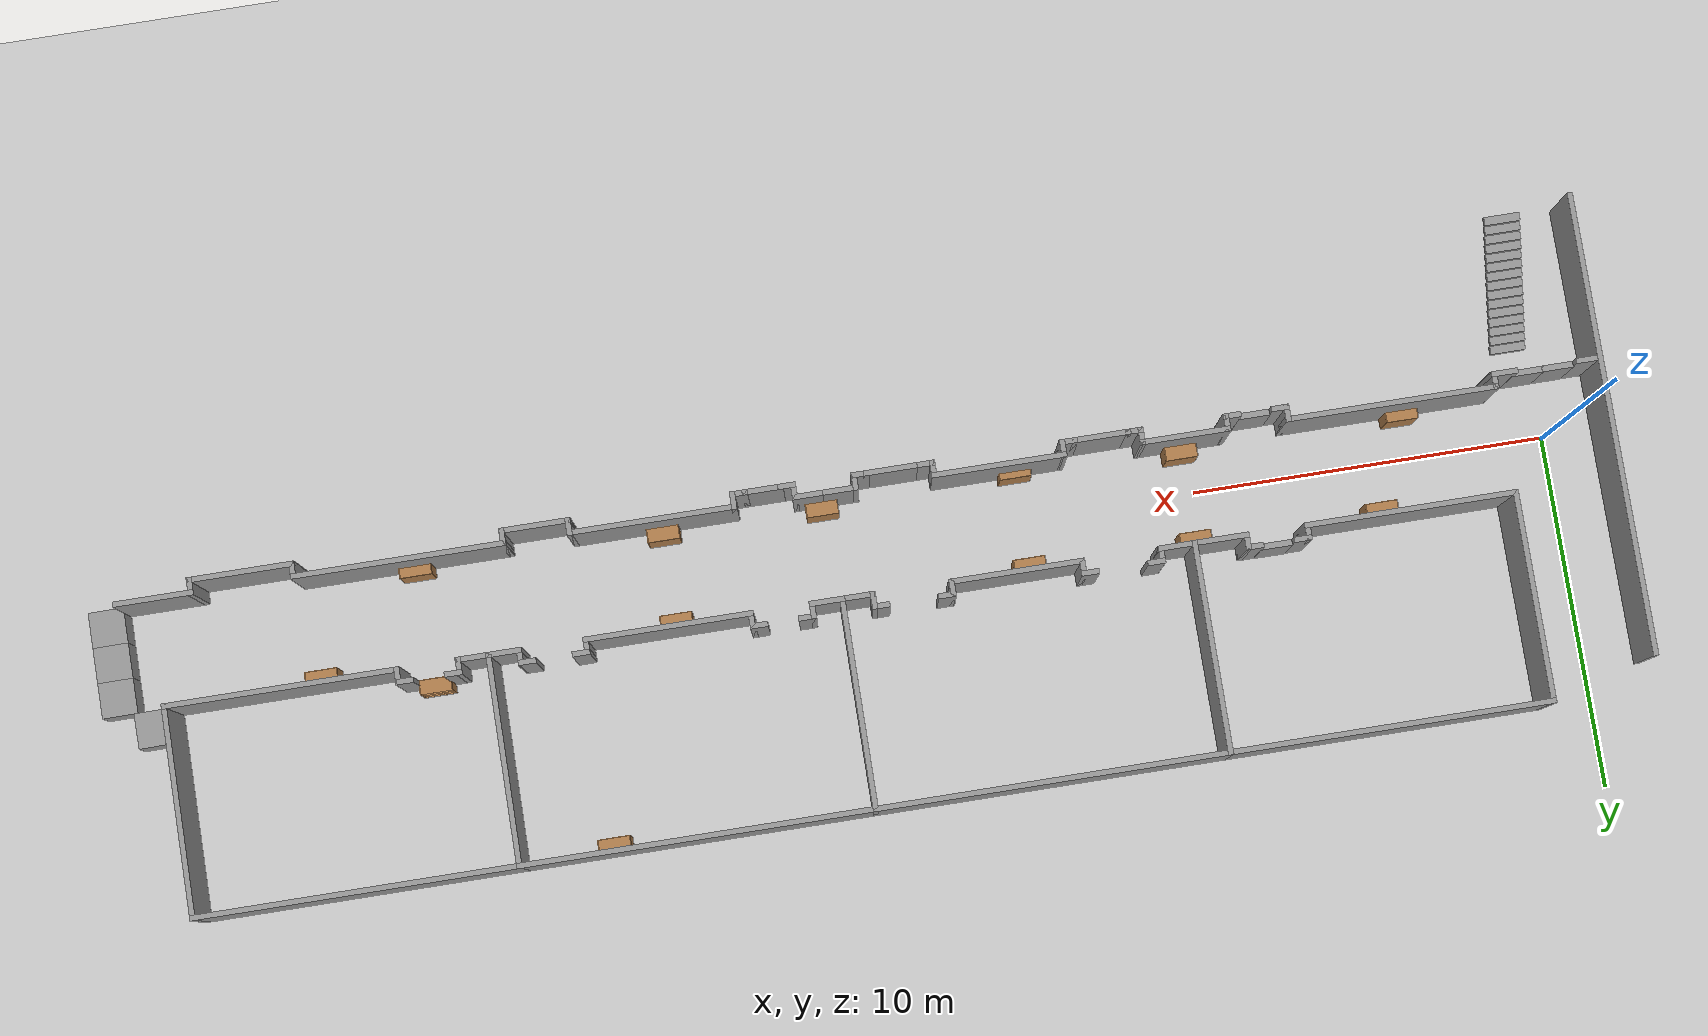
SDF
<sdf version="1.6">
 <world name="default">
  <include><uri>model://ground_plane</uri></include>
  <include><uri>model://sun</uri></include>
  <include><uri>model://corridor</uri><pose>19.325 0.575 0 0 -0 0</pose></include>
  <gravity>0 0 -9.8</gravity>
  <magnetic_field>6e-06 2.3e-05 -4.2e-05</magnetic_field>
  <atmosphere type="adiabatic"/>
  <physics name="default_physics" default="0" type="ode">
   <max_step_size>0.001</max_step_size>
   <real_time_factor>1</real_time_factor>
   <real_time_update_rate>1000</real_time_update_rate>
  </physics>
  <scene><ambient>0.4 0.4 0.4 1</ambient><background>0.7 0.7 0.7 1</background><shadows>1</shadows></scene>
  <spherical_coordinates>
   <surface_model>EARTH_WGS84</surface_model>
   <latitude_deg>0</latitude_deg>
   <longitude_deg>0</longitude_deg>
   <elevation>0</elevation>
   <heading_deg>0</heading_deg>
  </spherical_coordinates>
  <model name="bookshelf">
   <static>1</static>
   <link name="link">
    <inertial><mass>1</mass></inertial>
    <collision name="back">
     <pose>0 0.005 0.6 0 -0 0</pose>
     <geometry><box><size>0.9 0.01 1.2</size></box></geometry>
    </collision>
    <visual name="visual1">
     <pose>0 0.005 0.6 0 -0 0</pose>
     <geometry><box><size>0.9 0.01 1.2</size></box></geometry>
     <material>
      <script><uri>file://media/materials/scripts/gazebo.material</uri><name>Gazebo/Wood</name></script>
     </material>
    </visual>
    <collision name="left_side">
     <pose>0.45 -0.195 0.6 0 -0 0</pose>
     <geometry><box><size>0.02 0.4 1.2</size></box></geometry>
    </collision>
    <visual name="visual2">
     <pose>0.45 -0.195 0.6 0 -0 0</pose>
     <geometry><box><size>0.02 0.4 1.2</size></box></geometry>
     <material>
      <script><uri>file://media/materials/scripts/gazebo.material</uri><name>Gazebo/Wood</name></script>
     </material>
    </visual>
    <collision name="right_side">
     <pose>-0.45 -0.195 0.6 0 -0 0</pose>
     <geometry><box><size>0.02 0.4 1.2</size></box></geometry>
    </collision>
    <visual name="visual3">
     <pose>-0.45 -0.195 0.6 0 -0 0</pose>
     <geometry><box><size>0.02 0.4 1.2</size></box></geometry>
     <material>
      <script><uri>file://media/materials/scripts/gazebo.material</uri><name>Gazebo/Wood</name></script>
     </material>
    </visual>
    <collision name="bottom">
     <pose>0 -0.195 0.03 0 -0 0</pose>
     <geometry><box><size>0.88 0.4 0.06</size></box></geometry>
    </collision>
    <visual name="visual4">
     <pose>0 -0.195 0.03 0 -0 0</pose>
     <geometry><box><size>0.88 0.4 0.06</size></box></geometry>
     <material>
      <script><uri>file://media/materials/scripts/gazebo.material</uri><name>Gazebo/Wood</name></script>
     </material>
    </visual>
    <collision name="top">
     <pose>0 -0.195 1.19 0 -0 0</pose>
     <geometry><box><size>0.88 0.4 0.02</size></box></geometry>
    </collision>
    <visual name="visual5">
     <pose>0 -0.195 1.19 0 -0 0</pose>
     <geometry><box><size>0.88 0.4 0.02</size></box></geometry>
     <material>
      <script><uri>file://media/materials/scripts/gazebo.material</uri><name>Gazebo/Wood</name></script>
     </material>
    </visual>
    <collision name="low_shelf">
     <pose>0 -0.195 0.43 0 -0 0</pose>
     <geometry><box><size>0.88 0.4 0.02</size></box></geometry>
    </collision>
    <visual name="visual6">
     <pose>0 -0.195 0.43 0 -0 0</pose>
     <geometry><box><size>0.88 0.4 0.02</size></box></geometry>
     <material>
      <script><uri>file://media/materials/scripts/gazebo.material</uri><name>Gazebo/Wood</name></script>
     </material>
    </visual>
    <collision name="high_shelf">
     <pose>0 -0.195 0.8 0 -0 0</pose>
     <geometry><box><size>0.88 0.4 0.02</size></box></geometry>
    </collision>
    <visual name="visual7">
     <pose>0 -0.195 0.8 0 -0 0</pose>
     <geometry><box><size>0.88 0.4 0.02</size></box></geometry>
     <material>
      <script><uri>file://media/materials/scripts/gazebo.material</uri><name>Gazebo/Wood</name></script>
     </material>
    </visual>
   </link>
   <pose>4 -1 0 0 -0 0</pose>
  </model>
  <model name="bookshelf_clone">
   <static>1</static>
   <link name="link">
    <inertial><mass>1</mass></inertial>
    <collision name="back">
     <pose>0 0.005 0.6 0 -0 0</pose>
     <geometry><box><size>0.9 0.01 1.2</size></box></geometry>
    </collision>
    <visual name="visual1">
     <pose>0 0.005 0.6 0 -0 0</pose>
     <geometry><box><size>0.9 0.01 1.2</size></box></geometry>
     <material>
      <script><uri>file://media/materials/scripts/gazebo.material</uri><name>Gazebo/Wood</name></script>
     </material>
    </visual>
    <collision name="left_side">
     <pose>0.45 -0.195 0.6 0 -0 0</pose>
     <geometry><box><size>0.02 0.4 1.2</size></box></geometry>
    </collision>
    <visual name="visual2">
     <pose>0.45 -0.195 0.6 0 -0 0</pose>
     <geometry><box><size>0.02 0.4 1.2</size></box></geometry>
     <material>
      <script><uri>file://media/materials/scripts/gazebo.material</uri><name>Gazebo/Wood</name></script>
     </material>
    </visual>
    <collision name="right_side">
     <pose>-0.45 -0.195 0.6 0 -0 0</pose>
     <geometry><box><size>0.02 0.4 1.2</size></box></geometry>
    </collision>
    <visual name="visual3">
     <pose>-0.45 -0.195 0.6 0 -0 0</pose>
     <geometry><box><size>0.02 0.4 1.2</size></box></geometry>
     <material>
      <script><uri>file://media/materials/scripts/gazebo.material</uri><name>Gazebo/Wood</name></script>
     </material>
    </visual>
    <collision name="bottom">
     <pose>0 -0.195 0.03 0 -0 0</pose>
     <geometry><box><size>0.88 0.4 0.06</size></box></geometry>
    </collision>
    <visual name="visual4">
     <pose>0 -0.195 0.03 0 -0 0</pose>
     <geometry><box><size>0.88 0.4 0.06</size></box></geometry>
     <material>
      <script><uri>file://media/materials/scripts/gazebo.material</uri><name>Gazebo/Wood</name></script>
     </material>
    </visual>
    <collision name="top">
     <pose>0 -0.195 1.19 0 -0 0</pose>
     <geometry><box><size>0.88 0.4 0.02</size></box></geometry>
    </collision>
    <visual name="visual5">
     <pose>0 -0.195 1.19 0 -0 0</pose>
     <geometry><box><size>0.88 0.4 0.02</size></box></geometry>
     <material>
      <script><uri>file://media/materials/scripts/gazebo.material</uri><name>Gazebo/Wood</name></script>
     </material>
    </visual>
    <collision name="low_shelf">
     <pose>0 -0.195 0.43 0 -0 0</pose>
     <geometry><box><size>0.88 0.4 0.02</size></box></geometry>
    </collision>
    <visual name="visual6">
     <pose>0 -0.195 0.43 0 -0 0</pose>
     <geometry><box><size>0.88 0.4 0.02</size></box></geometry>
     <material>
      <script><uri>file://media/materials/scripts/gazebo.material</uri><name>Gazebo/Wood</name></script>
     </material>
    </visual>
    <collision name="high_shelf">
     <pose>0 -0.195 0.8 0 -0 0</pose>
     <geometry><box><size>0.88 0.4 0.02</size></box></geometry>
    </collision>
    <visual name="visual7">
     <pose>0 -0.195 0.8 0 -0 0</pose>
     <geometry><box><size>0.88 0.4 0.02</size></box></geometry>
     <material>
      <script><uri>file://media/materials/scripts/gazebo.material</uri><name>Gazebo/Wood</name></script>
     </material>
    </visual>
   </link>
   <pose>10.3 -0.9 0 0 -0 0</pose>
  </model>
  <model name="bookshelf_clone_0">
   <static>1</static>
   <link name="link">
    <inertial><mass>1</mass></inertial>
    <collision name="back">
     <pose>0 0.005 0.6 0 -0 0</pose>
     <geometry><box><size>0.9 0.01 1.2</size></box></geometry>
    </collision>
    <visual name="visual1">
     <pose>0 0.005 0.6 0 -0 0</pose>
     <geometry><box><size>0.9 0.01 1.2</size></box></geometry>
     <material>
      <script><uri>file://media/materials/scripts/gazebo.material</uri><name>Gazebo/Wood</name></script>
     </material>
    </visual>
    <collision name="left_side">
     <pose>0.45 -0.195 0.6 0 -0 0</pose>
     <geometry><box><size>0.02 0.4 1.2</size></box></geometry>
    </collision>
    <visual name="visual2">
     <pose>0.45 -0.195 0.6 0 -0 0</pose>
     <geometry><box><size>0.02 0.4 1.2</size></box></geometry>
     <material>
      <script><uri>file://media/materials/scripts/gazebo.material</uri><name>Gazebo/Wood</name></script>
     </material>
    </visual>
    <collision name="right_side">
     <pose>-0.45 -0.195 0.6 0 -0 0</pose>
     <geometry><box><size>0.02 0.4 1.2</size></box></geometry>
    </collision>
    <visual name="visual3">
     <pose>-0.45 -0.195 0.6 0 -0 0</pose>
     <geometry><box><size>0.02 0.4 1.2</size></box></geometry>
     <material>
      <script><uri>file://media/materials/scripts/gazebo.material</uri><name>Gazebo/Wood</name></script>
     </material>
    </visual>
    <collision name="bottom">
     <pose>0 -0.195 0.03 0 -0 0</pose>
     <geometry><box><size>0.88 0.4 0.06</size></box></geometry>
    </collision>
    <visual name="visual4">
     <pose>0 -0.195 0.03 0 -0 0</pose>
     <geometry><box><size>0.88 0.4 0.06</size></box></geometry>
     <material>
      <script><uri>file://media/materials/scripts/gazebo.material</uri><name>Gazebo/Wood</name></script>
     </material>
    </visual>
    <collision name="top">
     <pose>0 -0.195 1.19 0 -0 0</pose>
     <geometry><box><size>0.88 0.4 0.02</size></box></geometry>
    </collision>
    <visual name="visual5">
     <pose>0 -0.195 1.19 0 -0 0</pose>
     <geometry><box><size>0.88 0.4 0.02</size></box></geometry>
     <material>
      <script><uri>file://media/materials/scripts/gazebo.material</uri><name>Gazebo/Wood</name></script>
     </material>
    </visual>
    <collision name="low_shelf">
     <pose>0 -0.195 0.43 0 -0 0</pose>
     <geometry><box><size>0.88 0.4 0.02</size></box></geometry>
    </collision>
    <visual name="visual6">
     <pose>0 -0.195 0.43 0 -0 0</pose>
     <geometry><box><size>0.88 0.4 0.02</size></box></geometry>
     <material>
      <script><uri>file://media/materials/scripts/gazebo.material</uri><name>Gazebo/Wood</name></script>
     </material>
    </visual>
    <collision name="high_shelf">
     <pose>0 -0.195 0.8 0 -0 0</pose>
     <geometry><box><size>0.88 0.4 0.02</size></box></geometry>
    </collision>
    <visual name="visual7">
     <pose>0 -0.195 0.8 0 -0 0</pose>
     <geometry><box><size>0.88 0.4 0.02</size></box></geometry>
     <material>
      <script><uri>file://media/materials/scripts/gazebo.material</uri><name>Gazebo/Wood</name></script>
     </material>
    </visual>
   </link>
   <pose>15 -1.1 0 0 -0 0</pose>
  </model>
  <model name="bookshelf_clone_1">
   <static>1</static>
   <link name="link">
    <inertial><mass>1</mass></inertial>
    <collision name="back">
     <pose>0 0.005 0.6 0 -0 0</pose>
     <geometry><box><size>0.9 0.01 1.2</size></box></geometry>
    </collision>
    <visual name="visual1">
     <pose>0 0.005 0.6 0 -0 0</pose>
     <geometry><box><size>0.9 0.01 1.2</size></box></geometry>
     <material>
      <script><uri>file://media/materials/scripts/gazebo.material</uri><name>Gazebo/Wood</name></script>
     </material>
    </visual>
    <collision name="left_side">
     <pose>0.45 -0.195 0.6 0 -0 0</pose>
     <geometry><box><size>0.02 0.4 1.2</size></box></geometry>
    </collision>
    <visual name="visual2">
     <pose>0.45 -0.195 0.6 0 -0 0</pose>
     <geometry><box><size>0.02 0.4 1.2</size></box></geometry>
     <material>
      <script><uri>file://media/materials/scripts/gazebo.material</uri><name>Gazebo/Wood</name></script>
     </material>
    </visual>
    <collision name="right_side">
     <pose>-0.45 -0.195 0.6 0 -0 0</pose>
     <geometry><box><size>0.02 0.4 1.2</size></box></geometry>
    </collision>
    <visual name="visual3">
     <pose>-0.45 -0.195 0.6 0 -0 0</pose>
     <geometry><box><size>0.02 0.4 1.2</size></box></geometry>
     <material>
      <script><uri>file://media/materials/scripts/gazebo.material</uri><name>Gazebo/Wood</name></script>
     </material>
    </visual>
    <collision name="bottom">
     <pose>0 -0.195 0.03 0 -0 0</pose>
     <geometry><box><size>0.88 0.4 0.06</size></box></geometry>
    </collision>
    <visual name="visual4">
     <pose>0 -0.195 0.03 0 -0 0</pose>
     <geometry><box><size>0.88 0.4 0.06</size></box></geometry>
     <material>
      <script><uri>file://media/materials/scripts/gazebo.material</uri><name>Gazebo/Wood</name></script>
     </material>
    </visual>
    <collision name="top">
     <pose>0 -0.195 1.19 0 -0 0</pose>
     <geometry><box><size>0.88 0.4 0.02</size></box></geometry>
    </collision>
    <visual name="visual5">
     <pose>0 -0.195 1.19 0 -0 0</pose>
     <geometry><box><size>0.88 0.4 0.02</size></box></geometry>
     <material>
      <script><uri>file://media/materials/scripts/gazebo.material</uri><name>Gazebo/Wood</name></script>
     </material>
    </visual>
    <collision name="low_shelf">
     <pose>0 -0.195 0.43 0 -0 0</pose>
     <geometry><box><size>0.88 0.4 0.02</size></box></geometry>
    </collision>
    <visual name="visual6">
     <pose>0 -0.195 0.43 0 -0 0</pose>
     <geometry><box><size>0.88 0.4 0.02</size></box></geometry>
     <material>
      <script><uri>file://media/materials/scripts/gazebo.material</uri><name>Gazebo/Wood</name></script>
     </material>
    </visual>
    <collision name="high_shelf">
     <pose>0 -0.195 0.8 0 -0 0</pose>
     <geometry><box><size>0.88 0.4 0.02</size></box></geometry>
    </collision>
    <visual name="visual7">
     <pose>0 -0.195 0.8 0 -0 0</pose>
     <geometry><box><size>0.88 0.4 0.02</size></box></geometry>
     <material>
      <script><uri>file://media/materials/scripts/gazebo.material</uri><name>Gazebo/Wood</name></script>
     </material>
    </visual>
   </link>
   <pose>20.5 -0.9 0 0 -0 0</pose>
  </model>
  <model name="bookshelf_clone_2">
   <static>1</static>
   <link name="link">
    <inertial><mass>1</mass></inertial>
    <collision name="back">
     <pose>0 0.005 0.6 0 -0 0</pose>
     <geometry><box><size>0.9 0.01 1.2</size></box></geometry>
    </collision>
    <visual name="visual1">
     <pose>0 0.005 0.6 0 -0 0</pose>
     <geometry><box><size>0.9 0.01 1.2</size></box></geometry>
     <material>
      <script><uri>file://media/materials/scripts/gazebo.material</uri><name>Gazebo/Wood</name></script>
     </material>
    </visual>
    <collision name="left_side">
     <pose>0.45 -0.195 0.6 0 -0 0</pose>
     <geometry><box><size>0.02 0.4 1.2</size></box></geometry>
    </collision>
    <visual name="visual2">
     <pose>0.45 -0.195 0.6 0 -0 0</pose>
     <geometry><box><size>0.02 0.4 1.2</size></box></geometry>
     <material>
      <script><uri>file://media/materials/scripts/gazebo.material</uri><name>Gazebo/Wood</name></script>
     </material>
    </visual>
    <collision name="right_side">
     <pose>-0.45 -0.195 0.6 0 -0 0</pose>
     <geometry><box><size>0.02 0.4 1.2</size></box></geometry>
    </collision>
    <visual name="visual3">
     <pose>-0.45 -0.195 0.6 0 -0 0</pose>
     <geometry><box><size>0.02 0.4 1.2</size></box></geometry>
     <material>
      <script><uri>file://media/materials/scripts/gazebo.material</uri><name>Gazebo/Wood</name></script>
     </material>
    </visual>
    <collision name="bottom">
     <pose>0 -0.195 0.03 0 -0 0</pose>
     <geometry><box><size>0.88 0.4 0.06</size></box></geometry>
    </collision>
    <visual name="visual4">
     <pose>0 -0.195 0.03 0 -0 0</pose>
     <geometry><box><size>0.88 0.4 0.06</size></box></geometry>
     <material>
      <script><uri>file://media/materials/scripts/gazebo.material</uri><name>Gazebo/Wood</name></script>
     </material>
    </visual>
    <collision name="top">
     <pose>0 -0.195 1.19 0 -0 0</pose>
     <geometry><box><size>0.88 0.4 0.02</size></box></geometry>
    </collision>
    <visual name="visual5">
     <pose>0 -0.195 1.19 0 -0 0</pose>
     <geometry><box><size>0.88 0.4 0.02</size></box></geometry>
     <material>
      <script><uri>file://media/materials/scripts/gazebo.material</uri><name>Gazebo/Wood</name></script>
     </material>
    </visual>
    <collision name="low_shelf">
     <pose>0 -0.195 0.43 0 -0 0</pose>
     <geometry><box><size>0.88 0.4 0.02</size></box></geometry>
    </collision>
    <visual name="visual6">
     <pose>0 -0.195 0.43 0 -0 0</pose>
     <geometry><box><size>0.88 0.4 0.02</size></box></geometry>
     <material>
      <script><uri>file://media/materials/scripts/gazebo.material</uri><name>Gazebo/Wood</name></script>
     </material>
    </visual>
    <collision name="high_shelf">
     <pose>0 -0.195 0.8 0 -0 0</pose>
     <geometry><box><size>0.88 0.4 0.02</size></box></geometry>
    </collision>
    <visual name="visual7">
     <pose>0 -0.195 0.8 0 -0 0</pose>
     <geometry><box><size>0.88 0.4 0.02</size></box></geometry>
     <material>
      <script><uri>file://media/materials/scripts/gazebo.material</uri><name>Gazebo/Wood</name></script>
     </material>
    </visual>
   </link>
   <pose>25 -0.9 0 0 -0 0</pose>
  </model>
  <model name="bookshelf_clone_3">
   <static>1</static>
   <link name="link">
    <inertial><mass>1</mass></inertial>
    <collision name="back">
     <pose>0 0.005 0.6 0 -0 0</pose>
     <geometry><box><size>0.9 0.01 1.2</size></box></geometry>
    </collision>
    <visual name="visual1">
     <pose>0 0.005 0.6 0 -0 0</pose>
     <geometry><box><size>0.9 0.01 1.2</size></box></geometry>
     <material>
      <script><uri>file://media/materials/scripts/gazebo.material</uri><name>Gazebo/Wood</name></script>
     </material>
    </visual>
    <collision name="left_side">
     <pose>0.45 -0.195 0.6 0 -0 0</pose>
     <geometry><box><size>0.02 0.4 1.2</size></box></geometry>
    </collision>
    <visual name="visual2">
     <pose>0.45 -0.195 0.6 0 -0 0</pose>
     <geometry><box><size>0.02 0.4 1.2</size></box></geometry>
     <material>
      <script><uri>file://media/materials/scripts/gazebo.material</uri><name>Gazebo/Wood</name></script>
     </material>
    </visual>
    <collision name="right_side">
     <pose>-0.45 -0.195 0.6 0 -0 0</pose>
     <geometry><box><size>0.02 0.4 1.2</size></box></geometry>
    </collision>
    <visual name="visual3">
     <pose>-0.45 -0.195 0.6 0 -0 0</pose>
     <geometry><box><size>0.02 0.4 1.2</size></box></geometry>
     <material>
      <script><uri>file://media/materials/scripts/gazebo.material</uri><name>Gazebo/Wood</name></script>
     </material>
    </visual>
    <collision name="bottom">
     <pose>0 -0.195 0.03 0 -0 0</pose>
     <geometry><box><size>0.88 0.4 0.06</size></box></geometry>
    </collision>
    <visual name="visual4">
     <pose>0 -0.195 0.03 0 -0 0</pose>
     <geometry><box><size>0.88 0.4 0.06</size></box></geometry>
     <material>
      <script><uri>file://media/materials/scripts/gazebo.material</uri><name>Gazebo/Wood</name></script>
     </material>
    </visual>
    <collision name="top">
     <pose>0 -0.195 1.19 0 -0 0</pose>
     <geometry><box><size>0.88 0.4 0.02</size></box></geometry>
    </collision>
    <visual name="visual5">
     <pose>0 -0.195 1.19 0 -0 0</pose>
     <geometry><box><size>0.88 0.4 0.02</size></box></geometry>
     <material>
      <script><uri>file://media/materials/scripts/gazebo.material</uri><name>Gazebo/Wood</name></script>
     </material>
    </visual>
    <collision name="low_shelf">
     <pose>0 -0.195 0.43 0 -0 0</pose>
     <geometry><box><size>0.88 0.4 0.02</size></box></geometry>
    </collision>
    <visual name="visual6">
     <pose>0 -0.195 0.43 0 -0 0</pose>
     <geometry><box><size>0.88 0.4 0.02</size></box></geometry>
     <material>
      <script><uri>file://media/materials/scripts/gazebo.material</uri><name>Gazebo/Wood</name></script>
     </material>
    </visual>
    <collision name="high_shelf">
     <pose>0 -0.195 0.8 0 -0 0</pose>
     <geometry><box><size>0.88 0.4 0.02</size></box></geometry>
    </collision>
    <visual name="visual7">
     <pose>0 -0.195 0.8 0 -0 0</pose>
     <geometry><box><size>0.88 0.4 0.02</size></box></geometry>
     <material>
      <script><uri>file://media/materials/scripts/gazebo.material</uri><name>Gazebo/Wood</name></script>
     </material>
    </visual>
   </link>
   <pose>32 -1 0 0 -0 0</pose>
  </model>
  <model name="bookshelf_clone_4">
   <static>1</static>
   <link name="link">
    <inertial><mass>1</mass></inertial>
    <collision name="back">
     <pose>0 0.005 0.6 0 -0 0</pose>
     <geometry><box><size>0.9 0.01 1.2</size></box></geometry>
    </collision>
    <visual name="visual1">
     <pose>0 0.005 0.6 0 -0 0</pose>
     <geometry><box><size>0.9 0.01 1.2</size></box></geometry>
     <material>
      <script><uri>file://media/materials/scripts/gazebo.material</uri><name>Gazebo/Wood</name></script>
     </material>
    </visual>
    <collision name="left_side">
     <pose>0.45 -0.195 0.6 0 -0 0</pose>
     <geometry><box><size>0.02 0.4 1.2</size></box></geometry>
    </collision>
    <visual name="visual2">
     <pose>0.45 -0.195 0.6 0 -0 0</pose>
     <geometry><box><size>0.02 0.4 1.2</size></box></geometry>
     <material>
      <script><uri>file://media/materials/scripts/gazebo.material</uri><name>Gazebo/Wood</name></script>
     </material>
    </visual>
    <collision name="right_side">
     <pose>-0.45 -0.195 0.6 0 -0 0</pose>
     <geometry><box><size>0.02 0.4 1.2</size></box></geometry>
    </collision>
    <visual name="visual3">
     <pose>-0.45 -0.195 0.6 0 -0 0</pose>
     <geometry><box><size>0.02 0.4 1.2</size></box></geometry>
     <material>
      <script><uri>file://media/materials/scripts/gazebo.material</uri><name>Gazebo/Wood</name></script>
     </material>
    </visual>
    <collision name="bottom">
     <pose>0 -0.195 0.03 0 -0 0</pose>
     <geometry><box><size>0.88 0.4 0.06</size></box></geometry>
    </collision>
    <visual name="visual4">
     <pose>0 -0.195 0.03 0 -0 0</pose>
     <geometry><box><size>0.88 0.4 0.06</size></box></geometry>
     <material>
      <script><uri>file://media/materials/scripts/gazebo.material</uri><name>Gazebo/Wood</name></script>
     </material>
    </visual>
    <collision name="top">
     <pose>0 -0.195 1.19 0 -0 0</pose>
     <geometry><box><size>0.88 0.4 0.02</size></box></geometry>
    </collision>
    <visual name="visual5">
     <pose>0 -0.195 1.19 0 -0 0</pose>
     <geometry><box><size>0.88 0.4 0.02</size></box></geometry>
     <material>
      <script><uri>file://media/materials/scripts/gazebo.material</uri><name>Gazebo/Wood</name></script>
     </material>
    </visual>
    <collision name="low_shelf">
     <pose>0 -0.195 0.43 0 -0 0</pose>
     <geometry><box><size>0.88 0.4 0.02</size></box></geometry>
    </collision>
    <visual name="visual6">
     <pose>0 -0.195 0.43 0 -0 0</pose>
     <geometry><box><size>0.88 0.4 0.02</size></box></geometry>
     <material>
      <script><uri>file://media/materials/scripts/gazebo.material</uri><name>Gazebo/Wood</name></script>
     </material>
    </visual>
    <collision name="high_shelf">
     <pose>0 -0.195 0.8 0 -0 0</pose>
     <geometry><box><size>0.88 0.4 0.02</size></box></geometry>
    </collision>
    <visual name="visual7">
     <pose>0 -0.195 0.8 0 -0 0</pose>
     <geometry><box><size>0.88 0.4 0.02</size></box></geometry>
     <material>
      <script><uri>file://media/materials/scripts/gazebo.material</uri><name>Gazebo/Wood</name></script>
     </material>
    </visual>
   </link>
   <pose>5 1.2 0 0 0 -3.14159</pose>
  </model>
  <model name="bookshelf_clone_4_clone">
   <static>1</static>
   <link name="link">
    <inertial><mass>1</mass></inertial>
    <collision name="back">
     <pose>0 0.005 0.6 0 -0 0</pose>
     <geometry><box><size>0.9 0.01 1.2</size></box></geometry>
    </collision>
    <visual name="visual1">
     <pose>0 0.005 0.6 0 -0 0</pose>
     <geometry><box><size>0.9 0.01 1.2</size></box></geometry>
     <material>
      <script><uri>file://media/materials/scripts/gazebo.material</uri><name>Gazebo/Wood</name></script>
     </material>
    </visual>
    <collision name="left_side">
     <pose>0.45 -0.195 0.6 0 -0 0</pose>
     <geometry><box><size>0.02 0.4 1.2</size></box></geometry>
    </collision>
    <visual name="visual2">
     <pose>0.45 -0.195 0.6 0 -0 0</pose>
     <geometry><box><size>0.02 0.4 1.2</size></box></geometry>
     <material>
      <script><uri>file://media/materials/scripts/gazebo.material</uri><name>Gazebo/Wood</name></script>
     </material>
    </visual>
    <collision name="right_side">
     <pose>-0.45 -0.195 0.6 0 -0 0</pose>
     <geometry><box><size>0.02 0.4 1.2</size></box></geometry>
    </collision>
    <visual name="visual3">
     <pose>-0.45 -0.195 0.6 0 -0 0</pose>
     <geometry><box><size>0.02 0.4 1.2</size></box></geometry>
     <material>
      <script><uri>file://media/materials/scripts/gazebo.material</uri><name>Gazebo/Wood</name></script>
     </material>
    </visual>
    <collision name="bottom">
     <pose>0 -0.195 0.03 0 -0 0</pose>
     <geometry><box><size>0.88 0.4 0.06</size></box></geometry>
    </collision>
    <visual name="visual4">
     <pose>0 -0.195 0.03 0 -0 0</pose>
     <geometry><box><size>0.88 0.4 0.06</size></box></geometry>
     <material>
      <script><uri>file://media/materials/scripts/gazebo.material</uri><name>Gazebo/Wood</name></script>
     </material>
    </visual>
    <collision name="top">
     <pose>0 -0.195 1.19 0 -0 0</pose>
     <geometry><box><size>0.88 0.4 0.02</size></box></geometry>
    </collision>
    <visual name="visual5">
     <pose>0 -0.195 1.19 0 -0 0</pose>
     <geometry><box><size>0.88 0.4 0.02</size></box></geometry>
     <material>
      <script><uri>file://media/materials/scripts/gazebo.material</uri><name>Gazebo/Wood</name></script>
     </material>
    </visual>
    <collision name="low_shelf">
     <pose>0 -0.195 0.43 0 -0 0</pose>
     <geometry><box><size>0.88 0.4 0.02</size></box></geometry>
    </collision>
    <visual name="visual6">
     <pose>0 -0.195 0.43 0 -0 0</pose>
     <geometry><box><size>0.88 0.4 0.02</size></box></geometry>
     <material>
      <script><uri>file://media/materials/scripts/gazebo.material</uri><name>Gazebo/Wood</name></script>
     </material>
    </visual>
    <collision name="high_shelf">
     <pose>0 -0.195 0.8 0 -0 0</pose>
     <geometry><box><size>0.88 0.4 0.02</size></box></geometry>
    </collision>
    <visual name="visual7">
     <pose>0 -0.195 0.8 0 -0 0</pose>
     <geometry><box><size>0.88 0.4 0.02</size></box></geometry>
     <material>
      <script><uri>file://media/materials/scripts/gazebo.material</uri><name>Gazebo/Wood</name></script>
     </material>
    </visual>
   </link>
   <pose>10.3 1.2 0 0 0 -3.14159</pose>
  </model>
  <model name="bookshelf_clone_4_clone_0">
   <static>1</static>
   <link name="link">
    <inertial><mass>1</mass></inertial>
    <collision name="back">
     <pose>0 0.005 0.6 0 -0 0</pose>
     <geometry><box><size>0.9 0.01 1.2</size></box></geometry>
    </collision>
    <visual name="visual1">
     <pose>0 0.005 0.6 0 -0 0</pose>
     <geometry><box><size>0.9 0.01 1.2</size></box></geometry>
     <material>
      <script><uri>file://media/materials/scripts/gazebo.material</uri><name>Gazebo/Wood</name></script>
     </material>
    </visual>
    <collision name="left_side">
     <pose>0.45 -0.195 0.6 0 -0 0</pose>
     <geometry><box><size>0.02 0.4 1.2</size></box></geometry>
    </collision>
    <visual name="visual2">
     <pose>0.45 -0.195 0.6 0 -0 0</pose>
     <geometry><box><size>0.02 0.4 1.2</size></box></geometry>
     <material>
      <script><uri>file://media/materials/scripts/gazebo.material</uri><name>Gazebo/Wood</name></script>
     </material>
    </visual>
    <collision name="right_side">
     <pose>-0.45 -0.195 0.6 0 -0 0</pose>
     <geometry><box><size>0.02 0.4 1.2</size></box></geometry>
    </collision>
    <visual name="visual3">
     <pose>-0.45 -0.195 0.6 0 -0 0</pose>
     <geometry><box><size>0.02 0.4 1.2</size></box></geometry>
     <material>
      <script><uri>file://media/materials/scripts/gazebo.material</uri><name>Gazebo/Wood</name></script>
     </material>
    </visual>
    <collision name="bottom">
     <pose>0 -0.195 0.03 0 -0 0</pose>
     <geometry><box><size>0.88 0.4 0.06</size></box></geometry>
    </collision>
    <visual name="visual4">
     <pose>0 -0.195 0.03 0 -0 0</pose>
     <geometry><box><size>0.88 0.4 0.06</size></box></geometry>
     <material>
      <script><uri>file://media/materials/scripts/gazebo.material</uri><name>Gazebo/Wood</name></script>
     </material>
    </visual>
    <collision name="top">
     <pose>0 -0.195 1.19 0 -0 0</pose>
     <geometry><box><size>0.88 0.4 0.02</size></box></geometry>
    </collision>
    <visual name="visual5">
     <pose>0 -0.195 1.19 0 -0 0</pose>
     <geometry><box><size>0.88 0.4 0.02</size></box></geometry>
     <material>
      <script><uri>file://media/materials/scripts/gazebo.material</uri><name>Gazebo/Wood</name></script>
     </material>
    </visual>
    <collision name="low_shelf">
     <pose>0 -0.195 0.43 0 -0 0</pose>
     <geometry><box><size>0.88 0.4 0.02</size></box></geometry>
    </collision>
    <visual name="visual6">
     <pose>0 -0.195 0.43 0 -0 0</pose>
     <geometry><box><size>0.88 0.4 0.02</size></box></geometry>
     <material>
      <script><uri>file://media/materials/scripts/gazebo.material</uri><name>Gazebo/Wood</name></script>
     </material>
    </visual>
    <collision name="high_shelf">
     <pose>0 -0.195 0.8 0 -0 0</pose>
     <geometry><box><size>0.88 0.4 0.02</size></box></geometry>
    </collision>
    <visual name="visual7">
     <pose>0 -0.195 0.8 0 -0 0</pose>
     <geometry><box><size>0.88 0.4 0.02</size></box></geometry>
     <material>
      <script><uri>file://media/materials/scripts/gazebo.material</uri><name>Gazebo/Wood</name></script>
     </material>
    </visual>
   </link>
   <pose>15 1.2 0 0 0 -3.14159</pose>
  </model>
  <model name="bookshelf_clone_4_clone_1">
   <static>1</static>
   <link name="link">
    <inertial><mass>1</mass></inertial>
    <collision name="back">
     <pose>0 0.005 0.6 0 -0 0</pose>
     <geometry><box><size>0.9 0.01 1.2</size></box></geometry>
    </collision>
    <visual name="visual1">
     <pose>0 0.005 0.6 0 -0 0</pose>
     <geometry><box><size>0.9 0.01 1.2</size></box></geometry>
     <material>
      <script><uri>file://media/materials/scripts/gazebo.material</uri><name>Gazebo/Wood</name></script>
     </material>
    </visual>
    <collision name="left_side">
     <pose>0.45 -0.195 0.6 0 -0 0</pose>
     <geometry><box><size>0.02 0.4 1.2</size></box></geometry>
    </collision>
    <visual name="visual2">
     <pose>0.45 -0.195 0.6 0 -0 0</pose>
     <geometry><box><size>0.02 0.4 1.2</size></box></geometry>
     <material>
      <script><uri>file://media/materials/scripts/gazebo.material</uri><name>Gazebo/Wood</name></script>
     </material>
    </visual>
    <collision name="right_side">
     <pose>-0.45 -0.195 0.6 0 -0 0</pose>
     <geometry><box><size>0.02 0.4 1.2</size></box></geometry>
    </collision>
    <visual name="visual3">
     <pose>-0.45 -0.195 0.6 0 -0 0</pose>
     <geometry><box><size>0.02 0.4 1.2</size></box></geometry>
     <material>
      <script><uri>file://media/materials/scripts/gazebo.material</uri><name>Gazebo/Wood</name></script>
     </material>
    </visual>
    <collision name="bottom">
     <pose>0 -0.195 0.03 0 -0 0</pose>
     <geometry><box><size>0.88 0.4 0.06</size></box></geometry>
    </collision>
    <visual name="visual4">
     <pose>0 -0.195 0.03 0 -0 0</pose>
     <geometry><box><size>0.88 0.4 0.06</size></box></geometry>
     <material>
      <script><uri>file://media/materials/scripts/gazebo.material</uri><name>Gazebo/Wood</name></script>
     </material>
    </visual>
    <collision name="top">
     <pose>0 -0.195 1.19 0 -0 0</pose>
     <geometry><box><size>0.88 0.4 0.02</size></box></geometry>
    </collision>
    <visual name="visual5">
     <pose>0 -0.195 1.19 0 -0 0</pose>
     <geometry><box><size>0.88 0.4 0.02</size></box></geometry>
     <material>
      <script><uri>file://media/materials/scripts/gazebo.material</uri><name>Gazebo/Wood</name></script>
     </material>
    </visual>
    <collision name="low_shelf">
     <pose>0 -0.195 0.43 0 -0 0</pose>
     <geometry><box><size>0.88 0.4 0.02</size></box></geometry>
    </collision>
    <visual name="visual6">
     <pose>0 -0.195 0.43 0 -0 0</pose>
     <geometry><box><size>0.88 0.4 0.02</size></box></geometry>
     <material>
      <script><uri>file://media/materials/scripts/gazebo.material</uri><name>Gazebo/Wood</name></script>
     </material>
    </visual>
    <collision name="high_shelf">
     <pose>0 -0.195 0.8 0 -0 0</pose>
     <geometry><box><size>0.88 0.4 0.02</size></box></geometry>
    </collision>
    <visual name="visual7">
     <pose>0 -0.195 0.8 0 -0 0</pose>
     <geometry><box><size>0.88 0.4 0.02</size></box></geometry>
     <material>
      <script><uri>file://media/materials/scripts/gazebo.material</uri><name>Gazebo/Wood</name></script>
     </material>
    </visual>
   </link>
   <pose>25 1.2 0 0 0 -3.14159</pose>
  </model>
  <model name="bookshelf_clone_4_clone_2">
   <static>1</static>
   <link name="link">
    <inertial><mass>1</mass></inertial>
    <collision name="back">
     <pose>0 0.005 0.6 0 -0 0</pose>
     <geometry><box><size>0.9 0.01 1.2</size></box></geometry>
    </collision>
    <visual name="visual1">
     <pose>0 0.005 0.6 0 -0 0</pose>
     <geometry><box><size>0.9 0.01 1.2</size></box></geometry>
     <material>
      <script><uri>file://media/materials/scripts/gazebo.material</uri><name>Gazebo/Wood</name></script>
     </material>
    </visual>
    <collision name="left_side">
     <pose>0.45 -0.195 0.6 0 -0 0</pose>
     <geometry><box><size>0.02 0.4 1.2</size></box></geometry>
    </collision>
    <visual name="visual2">
     <pose>0.45 -0.195 0.6 0 -0 0</pose>
     <geometry><box><size>0.02 0.4 1.2</size></box></geometry>
     <material>
      <script><uri>file://media/materials/scripts/gazebo.material</uri><name>Gazebo/Wood</name></script>
     </material>
    </visual>
    <collision name="right_side">
     <pose>-0.45 -0.195 0.6 0 -0 0</pose>
     <geometry><box><size>0.02 0.4 1.2</size></box></geometry>
    </collision>
    <visual name="visual3">
     <pose>-0.45 -0.195 0.6 0 -0 0</pose>
     <geometry><box><size>0.02 0.4 1.2</size></box></geometry>
     <material>
      <script><uri>file://media/materials/scripts/gazebo.material</uri><name>Gazebo/Wood</name></script>
     </material>
    </visual>
    <collision name="bottom">
     <pose>0 -0.195 0.03 0 -0 0</pose>
     <geometry><box><size>0.88 0.4 0.06</size></box></geometry>
    </collision>
    <visual name="visual4">
     <pose>0 -0.195 0.03 0 -0 0</pose>
     <geometry><box><size>0.88 0.4 0.06</size></box></geometry>
     <material>
      <script><uri>file://media/materials/scripts/gazebo.material</uri><name>Gazebo/Wood</name></script>
     </material>
    </visual>
    <collision name="top">
     <pose>0 -0.195 1.19 0 -0 0</pose>
     <geometry><box><size>0.88 0.4 0.02</size></box></geometry>
    </collision>
    <visual name="visual5">
     <pose>0 -0.195 1.19 0 -0 0</pose>
     <geometry><box><size>0.88 0.4 0.02</size></box></geometry>
     <material>
      <script><uri>file://media/materials/scripts/gazebo.material</uri><name>Gazebo/Wood</name></script>
     </material>
    </visual>
    <collision name="low_shelf">
     <pose>0 -0.195 0.43 0 -0 0</pose>
     <geometry><box><size>0.88 0.4 0.02</size></box></geometry>
    </collision>
    <visual name="visual6">
     <pose>0 -0.195 0.43 0 -0 0</pose>
     <geometry><box><size>0.88 0.4 0.02</size></box></geometry>
     <material>
      <script><uri>file://media/materials/scripts/gazebo.material</uri><name>Gazebo/Wood</name></script>
     </material>
    </visual>
    <collision name="high_shelf">
     <pose>0 -0.195 0.8 0 -0 0</pose>
     <geometry><box><size>0.88 0.4 0.02</size></box></geometry>
    </collision>
    <visual name="visual7">
     <pose>0 -0.195 0.8 0 -0 0</pose>
     <geometry><box><size>0.88 0.4 0.02</size></box></geometry>
     <material>
      <script><uri>file://media/materials/scripts/gazebo.material</uri><name>Gazebo/Wood</name></script>
     </material>
    </visual>
   </link>
   <pose>35 1.2 0 0 0 -3.14159</pose>
  </model>
  <model name="bookshelf_clone_4_clone_3">
   <static>1</static>
   <link name="link">
    <inertial><mass>1</mass></inertial>
    <collision name="back">
     <pose>0 0.005 0.6 0 -0 0</pose>
     <geometry><box><size>0.9 0.01 1.2</size></box></geometry>
    </collision>
    <visual name="visual1">
     <pose>0 0.005 0.6 0 -0 0</pose>
     <geometry><box><size>0.9 0.01 1.2</size></box></geometry>
     <material>
      <script><uri>file://media/materials/scripts/gazebo.material</uri><name>Gazebo/Wood</name></script>
     </material>
    </visual>
    <collision name="left_side">
     <pose>0.45 -0.195 0.6 0 -0 0</pose>
     <geometry><box><size>0.02 0.4 1.2</size></box></geometry>
    </collision>
    <visual name="visual2">
     <pose>0.45 -0.195 0.6 0 -0 0</pose>
     <geometry><box><size>0.02 0.4 1.2</size></box></geometry>
     <material>
      <script><uri>file://media/materials/scripts/gazebo.material</uri><name>Gazebo/Wood</name></script>
     </material>
    </visual>
    <collision name="right_side">
     <pose>-0.45 -0.195 0.6 0 -0 0</pose>
     <geometry><box><size>0.02 0.4 1.2</size></box></geometry>
    </collision>
    <visual name="visual3">
     <pose>-0.45 -0.195 0.6 0 -0 0</pose>
     <geometry><box><size>0.02 0.4 1.2</size></box></geometry>
     <material>
      <script><uri>file://media/materials/scripts/gazebo.material</uri><name>Gazebo/Wood</name></script>
     </material>
    </visual>
    <collision name="bottom">
     <pose>0 -0.195 0.03 0 -0 0</pose>
     <geometry><box><size>0.88 0.4 0.06</size></box></geometry>
    </collision>
    <visual name="visual4">
     <pose>0 -0.195 0.03 0 -0 0</pose>
     <geometry><box><size>0.88 0.4 0.06</size></box></geometry>
     <material>
      <script><uri>file://media/materials/scripts/gazebo.material</uri><name>Gazebo/Wood</name></script>
     </material>
    </visual>
    <collision name="top">
     <pose>0 -0.195 1.19 0 -0 0</pose>
     <geometry><box><size>0.88 0.4 0.02</size></box></geometry>
    </collision>
    <visual name="visual5">
     <pose>0 -0.195 1.19 0 -0 0</pose>
     <geometry><box><size>0.88 0.4 0.02</size></box></geometry>
     <material>
      <script><uri>file://media/materials/scripts/gazebo.material</uri><name>Gazebo/Wood</name></script>
     </material>
    </visual>
    <collision name="low_shelf">
     <pose>0 -0.195 0.43 0 -0 0</pose>
     <geometry><box><size>0.88 0.4 0.02</size></box></geometry>
    </collision>
    <visual name="visual6">
     <pose>0 -0.195 0.43 0 -0 0</pose>
     <geometry><box><size>0.88 0.4 0.02</size></box></geometry>
     <material>
      <script><uri>file://media/materials/scripts/gazebo.material</uri><name>Gazebo/Wood</name></script>
     </material>
    </visual>
    <collision name="high_shelf">
     <pose>0 -0.195 0.8 0 -0 0</pose>
     <geometry><box><size>0.88 0.4 0.02</size></box></geometry>
    </collision>
    <visual name="visual7">
     <pose>0 -0.195 0.8 0 -0 0</pose>
     <geometry><box><size>0.88 0.4 0.02</size></box></geometry>
     <material>
      <script><uri>file://media/materials/scripts/gazebo.material</uri><name>Gazebo/Wood</name></script>
     </material>
    </visual>
   </link>
   <pose>31.8951 1.92485 0 0 0 -3.14159</pose>
  </model>
  <model name="bookshelf_clone_4_clone_4">
   <static>1</static>
   <link name="link">
    <inertial><mass>1</mass></inertial>
    <collision name="back">
     <pose>0 0.005 0.6 0 -0 0</pose>
     <geometry><box><size>0.9 0.01 1.2</size></box></geometry>
    </collision>
    <visual name="visual1">
     <pose>0 0.005 0.6 0 -0 0</pose>
     <geometry><box><size>0.9 0.01 1.2</size></box></geometry>
     <material>
      <script><uri>file://media/materials/scripts/gazebo.material</uri><name>Gazebo/Wood</name></script>
     </material>
    </visual>
    <collision name="left_side">
     <pose>0.45 -0.195 0.6 0 -0 0</pose>
     <geometry><box><size>0.02 0.4 1.2</size></box></geometry>
    </collision>
    <visual name="visual2">
     <pose>0.45 -0.195 0.6 0 -0 0</pose>
     <geometry><box><size>0.02 0.4 1.2</size></box></geometry>
     <material>
      <script><uri>file://media/materials/scripts/gazebo.material</uri><name>Gazebo/Wood</name></script>
     </material>
    </visual>
    <collision name="right_side">
     <pose>-0.45 -0.195 0.6 0 -0 0</pose>
     <geometry><box><size>0.02 0.4 1.2</size></box></geometry>
    </collision>
    <visual name="visual3">
     <pose>-0.45 -0.195 0.6 0 -0 0</pose>
     <geometry><box><size>0.02 0.4 1.2</size></box></geometry>
     <material>
      <script><uri>file://media/materials/scripts/gazebo.material</uri><name>Gazebo/Wood</name></script>
     </material>
    </visual>
    <collision name="bottom">
     <pose>0 -0.195 0.03 0 -0 0</pose>
     <geometry><box><size>0.88 0.4 0.06</size></box></geometry>
    </collision>
    <visual name="visual4">
     <pose>0 -0.195 0.03 0 -0 0</pose>
     <geometry><box><size>0.88 0.4 0.06</size></box></geometry>
     <material>
      <script><uri>file://media/materials/scripts/gazebo.material</uri><name>Gazebo/Wood</name></script>
     </material>
    </visual>
    <collision name="top">
     <pose>0 -0.195 1.19 0 -0 0</pose>
     <geometry><box><size>0.88 0.4 0.02</size></box></geometry>
    </collision>
    <visual name="visual5">
     <pose>0 -0.195 1.19 0 -0 0</pose>
     <geometry><box><size>0.88 0.4 0.02</size></box></geometry>
     <material>
      <script><uri>file://media/materials/scripts/gazebo.material</uri><name>Gazebo/Wood</name></script>
     </material>
    </visual>
    <collision name="low_shelf">
     <pose>0 -0.195 0.43 0 -0 0</pose>
     <geometry><box><size>0.88 0.4 0.02</size></box></geometry>
    </collision>
    <visual name="visual6">
     <pose>0 -0.195 0.43 0 -0 0</pose>
     <geometry><box><size>0.88 0.4 0.02</size></box></geometry>
     <material>
      <script><uri>file://media/materials/scripts/gazebo.material</uri><name>Gazebo/Wood</name></script>
     </material>
    </visual>
    <collision name="high_shelf">
     <pose>0 -0.195 0.8 0 -0 0</pose>
     <geometry><box><size>0.88 0.4 0.02</size></box></geometry>
    </collision>
    <visual name="visual7">
     <pose>0 -0.195 0.8 0 -0 0</pose>
     <geometry><box><size>0.88 0.4 0.02</size></box></geometry>
     <material>
      <script><uri>file://media/materials/scripts/gazebo.material</uri><name>Gazebo/Wood</name></script>
     </material>
    </visual>
   </link>
   <pose>27.6297 7.09233 0 0 0 -3.14159</pose>
  </model>
  <model name="unit_box">
   <pose>40.7245 -0.928983 0.499995 1e-05 -0 0.003393</pose>
   <link name="link">
    <inertial>
     <mass>1</mass>
     <inertia>
      <ixx>0.166667</ixx>
      <ixy>0</ixy>
      <ixz>0</ixz>
      <iyy>0.166667</iyy>
      <iyz>0</iyz>
      <izz>0.166667</izz>
     </inertia>
    </inertial>
    <collision name="collision"><geometry><box><size>1 1 1</size></box></geometry></collision>
    <visual name="visual">
     <geometry><box><size>1 1 1</size></box></geometry>
     <material>
      <script><name>Gazebo/Grey</name><uri>file://media/materials/scripts/gazebo.material</uri></script>
     </material>
    </visual>
   </link>
  </model>
  <model name="unit_box_clone">
   <pose>40.7212 0.07103 0.5 0 -0 0.003391</pose>
   <link name="link">
    <inertial>
     <mass>1</mass>
     <inertia>
      <ixx>0.166667</ixx>
      <ixy>0</ixy>
      <ixz>0</ixz>
      <iyy>0.166667</iyy>
      <iyz>0</iyz>
      <izz>0.166667</izz>
     </inertia>
    </inertial>
    <collision name="collision"><geometry><box><size>1 1 1</size></box></geometry></collision>
    <visual name="visual">
     <geometry><box><size>1 1 1</size></box></geometry>
     <material>
      <script><name>Gazebo/Grey</name><uri>file://media/materials/scripts/gazebo.material</uri></script>
     </material>
    </visual>
   </link>
  </model>
  <model name="unit_box_clone_0">
   <pose>40.7164 1.07105 0.5 0 -0 0.003375</pose>
   <link name="link">
    <inertial>
     <mass>1</mass>
     <inertia>
      <ixx>0.166667</ixx>
      <ixy>0</ixy>
      <ixz>0</ixz>
      <iyy>0.166667</iyy>
      <iyz>0</iyz>
      <izz>0.166667</izz>
     </inertia>
    </inertial>
    <collision name="collision"><geometry><box><size>1 1 1</size></box></geometry></collision>
    <visual name="visual">
     <geometry><box><size>1 1 1</size></box></geometry>
     <material>
      <script><name>Gazebo/Grey</name><uri>file://media/materials/scripts/gazebo.material</uri></script>
     </material>
    </visual>
   </link>
  </model>
  <model name="unit_box_clone_1">
   <pose>39.8258 2.06473 0.499995 -1e-05 -0 0.012024</pose>
   <link name="link">
    <inertial>
     <mass>1</mass>
     <inertia>
      <ixx>0.166667</ixx>
      <ixy>0</ixy>
      <ixz>0</ixz>
      <iyy>0.166667</iyy>
      <iyz>0</iyz>
      <izz>0.166667</izz>
     </inertia>
    </inertial>
    <collision name="collision"><geometry><box><size>1 1 1</size></box></geometry></collision>
    <visual name="visual">
     <geometry><box><size>1 1 1</size></box></geometry>
     <material>
      <script><name>Gazebo/Grey</name><uri>file://media/materials/scripts/gazebo.material</uri></script>
     </material>
    </visual>
   </link>
  </model>
 </world>
</sdf>
